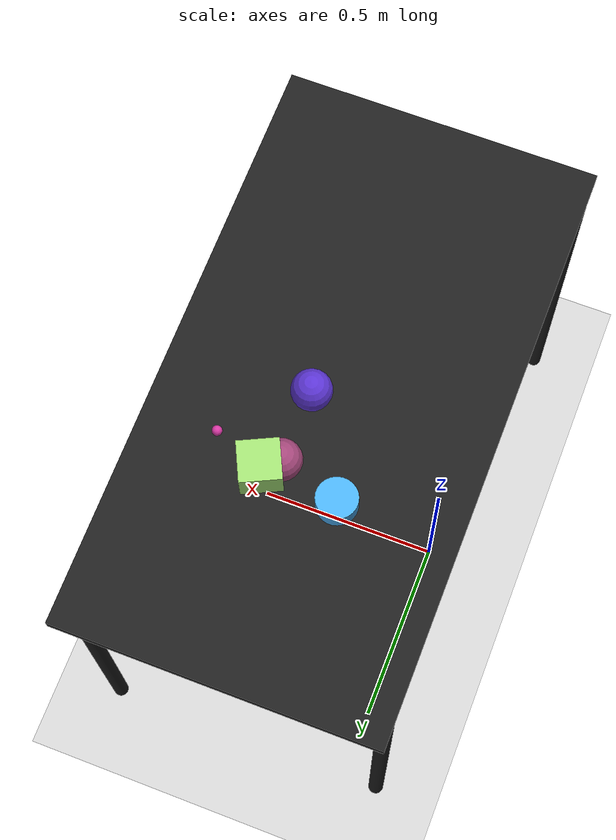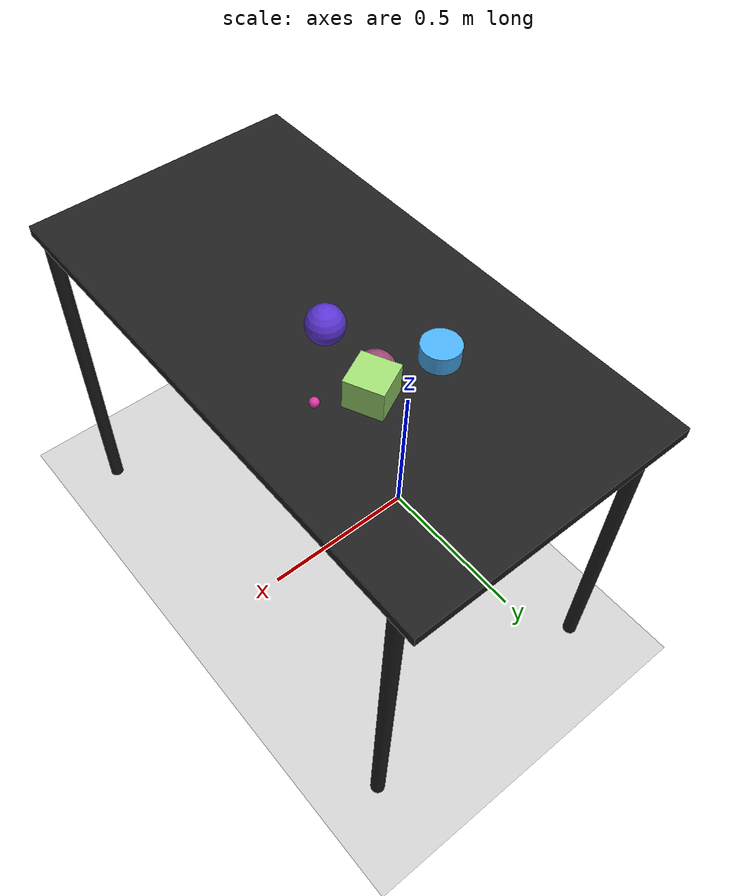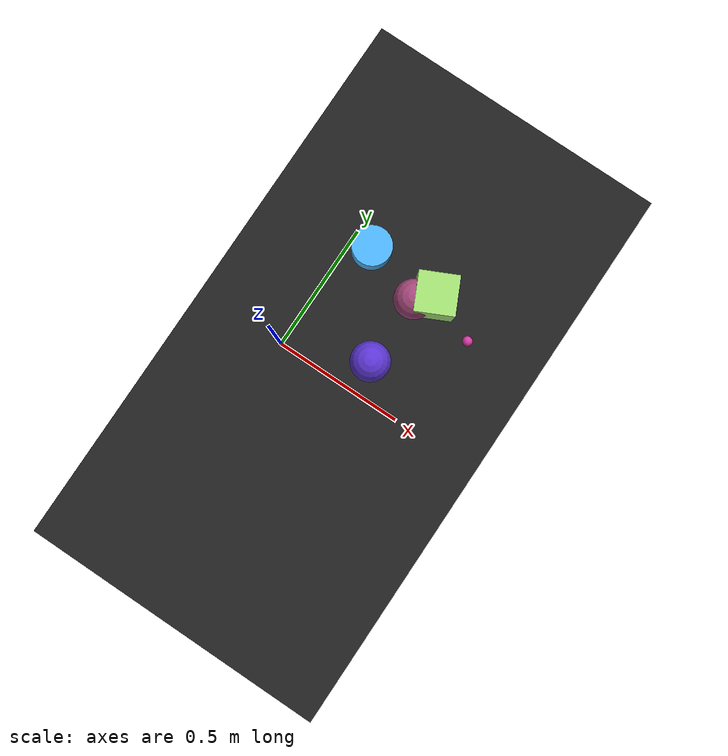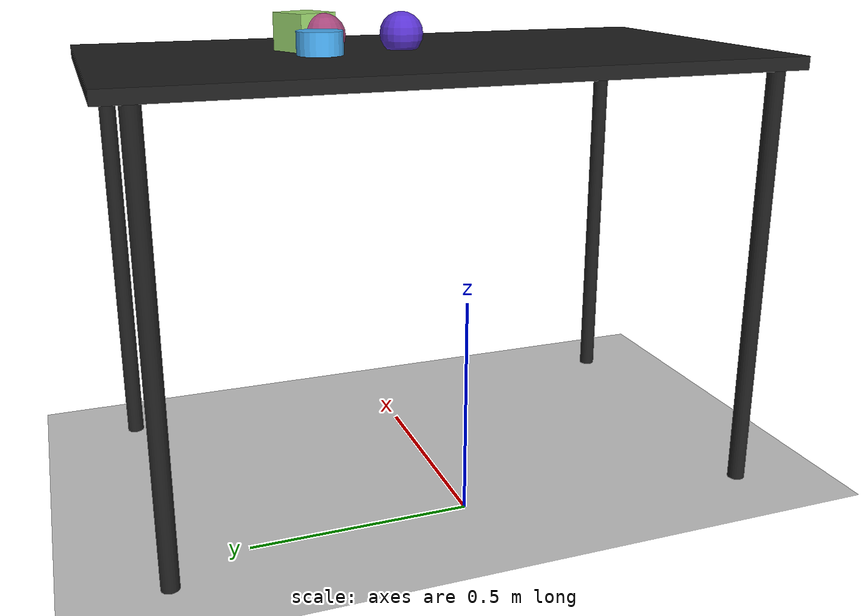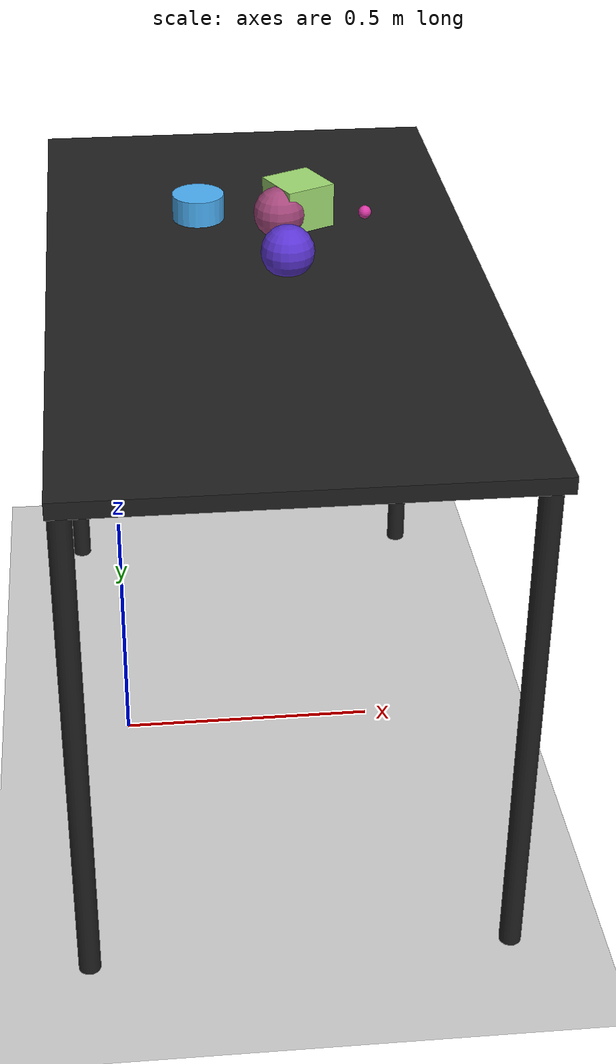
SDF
<?xml version="1.0" ?>
<sdf version="1.6">
  <world name="arm_world">
    <plugin filename="gz-sim-physics-system" name="gz::sim::systems::Physics">
      <engine>
        <filename>libgz-physics-bullet-featherstone-plugin.so</filename>
      </engine>
    </plugin>
    <plugin filename="gz-sim-user-commands-system" name="gz::sim::systems::UserCommands"/>
    <plugin filename="gz-sim-scene-broadcaster-system" name="gz::sim::systems::SceneBroadcaster"/>
    <plugin filename="gz-sim-sensors-system" name="gz::sim::systems::Sensors">
      <render_engine>ogre2</render_engine>
    </plugin>
    <gravity>0.0 0.0 -9.8</gravity>
    <scene>
      <shadows>false</shadows>
    </scene>
    <gui>
      <camera name="user_camera">
        <pose>0.75 -0.75 1.4 0 0.29 2.21</pose>
      </camera>
    </gui>
    <include>
      <uri>https://fuel.gazebosim.org/1.0/OpenRobotics/models/Sun</uri>
    </include>
    <model name="table">
      <static>true</static>
      <include>
        <uri>model://table</uri>
      </include>
      <pose>0.29 0 0 0 0 1.5708</pose>
    </model>
    <model name="ground_plane">
      <static>true</static>
      <link name="link">
        <collision name="collision">
          <geometry>
            <plane>
              <normal>0 0 1</normal>
            </plane>
          </geometry>
          <surface>
            <friction>
              <ode>
                <mu>1.0</mu>
                <mu2>1.0</mu2>
              </ode>
            </friction>
          </surface>
        </collision>
        <visual name="visual">
          <geometry>
            <plane>
              <normal>0 0 1</normal>
              <size>100 100</size>
            </plane>
          </geometry>
          <material>
            <ambient>0.8 0.8 0.8 1</ambient>
            <diffuse>0.8 0.8 0.8 1</diffuse>
            <specular>0.8 0.8 0.8 1</specular>
          </material>
        </visual>
      </link>
    </model>
    <model name="cylinder_l_0">
      <pose>0.183 0.266 1.05 0 0 0.9</pose>
      <link name="cylinder_l_0_link">
        <inertial>
          <mass>0.05</mass>
          <inertia>
            <ixx>2.04e-7</ixx>
            <iyy>2.04e-7</iyy>
            <izz>3.9e-8</izz>
            <ixy>0</ixy>
            <ixz>0</ixz>
            <iyz>0</iyz>
          </inertia>
        </inertial>
        <collision name="cylinder_l_0_collision">
          <geometry>
            <cylinder>
              <radius>0.05</radius>
              <length>0.05</length>
            </cylinder>
          </geometry>
          <surface>
            <friction>
              <ode>
                <mu>0.8</mu>
                <mu2>0.8</mu2>
                <fdir1>0 0 1</fdir1>
                <slip1>0.001</slip1>
                <slip2>0.001</slip2>
              </ode>
              <torsional>
                <coefficient>0.1</coefficient>
                <surface_radius>0.015</surface_radius>
                <use_patch_radius>true</use_patch_radius>
              </torsional>
            </friction>
            <contact>
              <ode>
                <kp>1e5</kp>
                <kd>10</kd>
                <max_vel>0.1</max_vel>
                <min_depth>0.001</min_depth>
                <soft_cfm>0.01</soft_cfm>
                <soft_erp>0.2</soft_erp>
              </ode>
            </contact>
            <bounce>
              <restitution_coefficient>0.2</restitution_coefficient>
              <threshold>0.01</threshold>
            </bounce>
          </surface>
        </collision>
        <visual name="cylinder_l_0_visual">
          <geometry>
            <cylinder>
              <radius>0.05</radius>
              <length>0.05</length>
            </cylinder>
          </geometry>
          <material>
            <ambient>0.29 0.68 0.95 1</ambient>
            <diffuse>0.29 0.68 0.95 1</diffuse>
          </material>
        </visual>
        <velocity_decay>
          <linear>1</linear>
          <angular>1</angular>
        </velocity_decay>
      </link>
    </model>
    <model name="sphere_l_1">
      <pose>0.333 0.035 1.05 0 0 4.03</pose>
      <link name="sphere_l_1_link">
        <inertial>
          <mass>0.05</mass>
          <inertia>
            <ixx>2.04e-7</ixx>
            <iyy>2.04e-7</iyy>
            <izz>3.9e-8</izz>
            <ixy>0</ixy>
            <ixz>0</ixz>
            <iyz>0</iyz>
          </inertia>
        </inertial>
        <collision name="sphere_l_1_collision">
          <geometry>
            <sphere>
              <radius>0.05</radius>
            </sphere>
          </geometry>
          <surface>
            <friction>
              <ode>
                <mu>0.8</mu>
                <mu2>0.8</mu2>
                <fdir1>0 0 1</fdir1>
                <slip1>0.001</slip1>
                <slip2>0.001</slip2>
              </ode>
              <torsional>
                <coefficient>0.1</coefficient>
                <surface_radius>0.015</surface_radius>
                <use_patch_radius>true</use_patch_radius>
              </torsional>
            </friction>
            <contact>
              <ode>
                <kp>1e5</kp>
                <kd>10</kd>
                <max_vel>0.1</max_vel>
                <min_depth>0.001</min_depth>
                <soft_cfm>0.01</soft_cfm>
                <soft_erp>0.2</soft_erp>
              </ode>
            </contact>
            <bounce>
              <restitution_coefficient>0.2</restitution_coefficient>
              <threshold>0.01</threshold>
            </bounce>
          </surface>
        </collision>
        <visual name="sphere_l_1_visual">
          <geometry>
            <sphere>
              <radius>0.05</radius>
            </sphere>
          </geometry>
          <material>
            <ambient>0.35 0.2 0.81 1</ambient>
            <diffuse>0.35 0.2 0.81 1</diffuse>
          </material>
        </visual>
        <velocity_decay>
          <linear>1</linear>
          <angular>1</angular>
        </velocity_decay>
      </link>
    </model>
    <model name="sphere_l_2">
      <pose>0.336 0.218 1.05 0 0 5.49</pose>
      <link name="sphere_l_2_link">
        <inertial>
          <mass>0.05</mass>
          <inertia>
            <ixx>2.04e-7</ixx>
            <iyy>2.04e-7</iyy>
            <izz>3.9e-8</izz>
            <ixy>0</ixy>
            <ixz>0</ixz>
            <iyz>0</iyz>
          </inertia>
        </inertial>
        <collision name="sphere_l_2_collision">
          <geometry>
            <sphere>
              <radius>0.05</radius>
            </sphere>
          </geometry>
          <surface>
            <friction>
              <ode>
                <mu>0.8</mu>
                <mu2>0.8</mu2>
                <fdir1>0 0 1</fdir1>
                <slip1>0.001</slip1>
                <slip2>0.001</slip2>
              </ode>
              <torsional>
                <coefficient>0.1</coefficient>
                <surface_radius>0.015</surface_radius>
                <use_patch_radius>true</use_patch_radius>
              </torsional>
            </friction>
            <contact>
              <ode>
                <kp>1e5</kp>
                <kd>10</kd>
                <max_vel>0.1</max_vel>
                <min_depth>0.001</min_depth>
                <soft_cfm>0.01</soft_cfm>
                <soft_erp>0.2</soft_erp>
              </ode>
            </contact>
            <bounce>
              <restitution_coefficient>0.2</restitution_coefficient>
              <threshold>0.01</threshold>
            </bounce>
          </surface>
        </collision>
        <visual name="sphere_l_2_visual">
          <geometry>
            <sphere>
              <radius>0.05</radius>
            </sphere>
          </geometry>
          <material>
            <ambient>0.63 0.27 0.47 1</ambient>
            <diffuse>0.63 0.27 0.47 1</diffuse>
          </material>
        </visual>
        <velocity_decay>
          <linear>1</linear>
          <angular>1</angular>
        </velocity_decay>
      </link>
    </model>
    <model name="cube_l_3">
      <pose>0.375 0.252 1.05 0 0 5.16</pose>
      <link name="cube_l_3_link">
        <inertial>
          <mass>0.05</mass>
          <inertia>
            <ixx>2.04e-7</ixx>
            <iyy>2.04e-7</iyy>
            <izz>3.9e-8</izz>
            <ixy>0</ixy>
            <ixz>0</ixz>
            <iyz>0</iyz>
          </inertia>
        </inertial>
        <collision name="cube_l_3_collision">
          <geometry>
            <box>
              <size>0.1 0.1 0.1</size>
            </box>
          </geometry>
          <surface>
            <friction>
              <ode>
                <mu>0.8</mu>
                <mu2>0.8</mu2>
                <fdir1>0 0 1</fdir1>
                <slip1>0.001</slip1>
                <slip2>0.001</slip2>
              </ode>
              <torsional>
                <coefficient>0.1</coefficient>
                <surface_radius>0.015</surface_radius>
                <use_patch_radius>true</use_patch_radius>
              </torsional>
            </friction>
            <contact>
              <ode>
                <kp>1e5</kp>
                <kd>10</kd>
                <max_vel>0.1</max_vel>
                <min_depth>0.001</min_depth>
                <soft_cfm>0.01</soft_cfm>
                <soft_erp>0.2</soft_erp>
              </ode>
            </contact>
            <bounce>
              <restitution_coefficient>0.2</restitution_coefficient>
              <threshold>0.01</threshold>
            </bounce>
          </surface>
        </collision>
        <visual name="cube_l_3_visual">
          <geometry>
            <box>
              <size>0.1 0.1 0.1</size>
            </box>
          </geometry>
          <material>
            <ambient>0.62 0.85 0.44 1</ambient>
            <diffuse>0.62 0.85 0.44 1</diffuse>
          </material>
        </visual>
        <velocity_decay>
          <linear>1</linear>
          <angular>1</angular>
        </velocity_decay>
      </link>
    </model>
    <model name="sphere_s_4">
      <pose>0.499 0.205 1.05 0 0 1.09</pose>
      <link name="sphere_s_4_link">
        <inertial>
          <mass>0.05</mass>
          <inertia>
            <ixx>2.04e-7</ixx>
            <iyy>2.04e-7</iyy>
            <izz>3.9e-8</izz>
            <ixy>0</ixy>
            <ixz>0</ixz>
            <iyz>0</iyz>
          </inertia>
        </inertial>
        <collision name="sphere_s_4_collision">
          <geometry>
            <sphere>
              <radius>0.0125</radius>
            </sphere>
          </geometry>
          <surface>
            <friction>
              <ode>
                <mu>0.8</mu>
                <mu2>0.8</mu2>
                <fdir1>0 0 1</fdir1>
                <slip1>0.001</slip1>
                <slip2>0.001</slip2>
              </ode>
              <torsional>
                <coefficient>0.1</coefficient>
                <surface_radius>0.015</surface_radius>
                <use_patch_radius>true</use_patch_radius>
              </torsional>
            </friction>
            <contact>
              <ode>
                <kp>1e5</kp>
                <kd>10</kd>
                <max_vel>0.1</max_vel>
                <min_depth>0.001</min_depth>
                <soft_cfm>0.01</soft_cfm>
                <soft_erp>0.2</soft_erp>
              </ode>
            </contact>
            <bounce>
              <restitution_coefficient>0.2</restitution_coefficient>
              <threshold>0.01</threshold>
            </bounce>
          </surface>
        </collision>
        <visual name="sphere_s_4_visual">
          <geometry>
            <sphere>
              <radius>0.0125</radius>
            </sphere>
          </geometry>
          <material>
            <ambient>0.83 0.21 0.63 1</ambient>
            <diffuse>0.83 0.21 0.63 1</diffuse>
          </material>
        </visual>
        <velocity_decay>
          <linear>1</linear>
          <angular>1</angular>
        </velocity_decay>
      </link>
    </model>
  </world>
</sdf>

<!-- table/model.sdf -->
<sdf version="1.5">
  <model name="table">
    <static>true</static>
    <link name="link">
      <collision name="surface">
        <pose>0 0 1.0 0 0 0</pose>
        <geometry>
          <box>
            <size>1.5 0.8 0.03</size>
          </box>
        </geometry>
        <surface>
          <friction>
            <ode>
              <mu>0.6</mu>
              <mu2>0.6</mu2>
            </ode>
          </friction>
        </surface>
      </collision>
      <visual name="surface">
        <pose>0 0 1.0 0 0 0</pose>
        <geometry>
          <box>
            <size>1.5 0.8 0.03</size>
          </box>
        </geometry>
        <material>
          <script>
            <uri>file://media/materials/scripts/gazebo.material</uri>
            <name>Gazebo/Black</name>
          </script>
        </material>
      </visual>
      <collision name="front_left_leg">
        <pose>0.68 0.38 0.5 0 0 0</pose>
        <geometry>
          <cylinder>
            <radius>0.02</radius>
            <length>1.0</length>
          </cylinder>
        </geometry>
      </collision>
      <visual name="front_left_leg">
        <pose>0.68 0.38 0.5 0 0 0</pose>
        <geometry>
          <cylinder>
            <radius>0.02</radius>
            <length>1.0</length>
          </cylinder>
        </geometry>
        <material>
          <script>
            <uri>file://media/materials/scripts/gazebo.material</uri>
            <name>Gazebo/Black</name>
          </script>
        </material>
      </visual>
      <collision name="front_right_leg">
        <pose>0.68 -0.38 0.5 0 0 0</pose>
        <geometry>
          <cylinder>
            <radius>0.02</radius>
            <length>1.0</length>
          </cylinder>
        </geometry>
      </collision>
      <visual name="front_right_leg">
        <pose>0.68 -0.38 0.5 0 0 0</pose>
        <geometry>
          <cylinder>
            <radius>0.02</radius>
            <length>1.0</length>
          </cylinder>
        </geometry>
        <material>
          <script>
            <uri>file://media/materials/scripts/gazebo.material</uri>
            <name>Gazebo/Black</name>
          </script>
        </material>
      </visual>
      <collision name="back_right_leg">
        <pose>-0.68 -0.38 0.5 0 0 0</pose>
        <geometry>
          <cylinder>
            <radius>0.02</radius>
            <length>1.0</length>
          </cylinder>
        </geometry>
      </collision>
      <visual name="back_right_leg">
        <pose>-0.68 -0.38 0.5 0 0 0</pose>
        <geometry>
          <cylinder>
            <radius>0.02</radius>
            <length>1.0</length>
          </cylinder>
        </geometry>
        <material>
          <script>
            <uri>file://media/materials/scripts/gazebo.material</uri>
            <name>Gazebo/Black</name>
          </script>
        </material>
      </visual>
      <collision name="back_left_leg">
        <pose>-0.68 0.38 0.5 0 0 0</pose>
        <geometry>
          <cylinder>
            <radius>0.02</radius>
            <length>1.0</length>
          </cylinder>
        </geometry>
      </collision>
      <visual name="back_left_leg">
        <pose>-0.68 0.38 0.5 0 0 0</pose>
        <geometry>
          <cylinder>
            <radius>0.02</radius>
            <length>1.0</length>
          </cylinder>
        </geometry>
        <material>
          <script>
            <uri>file://media/materials/scripts/gazebo.material</uri>
            <name>Gazebo/Black</name>
          </script>
        </material>
      </visual>
    </link>
  </model>
</sdf>
